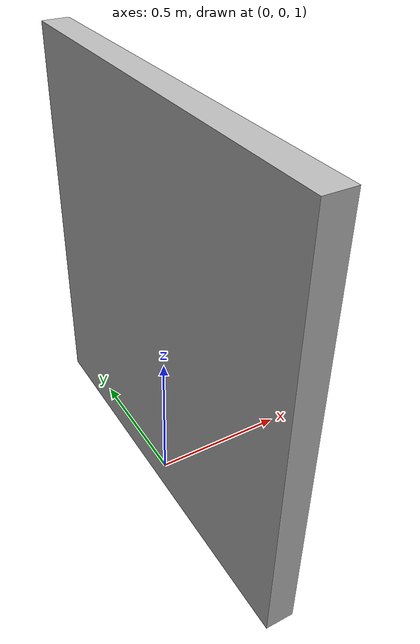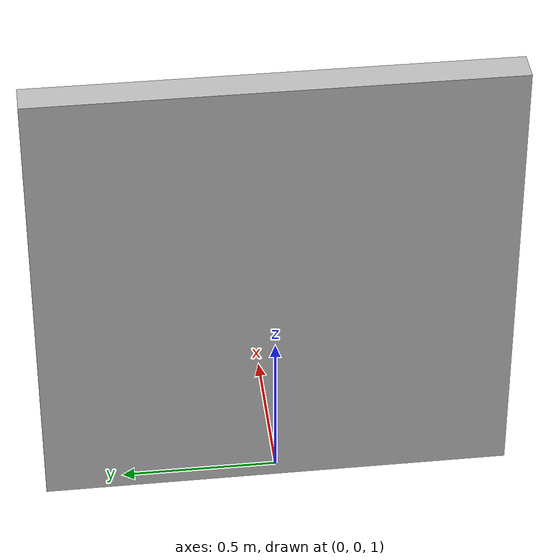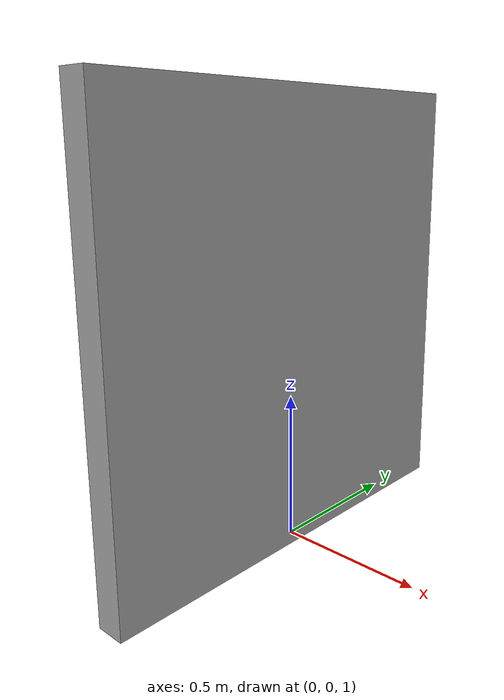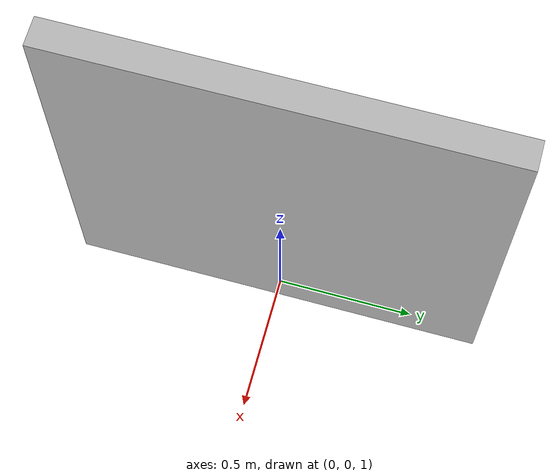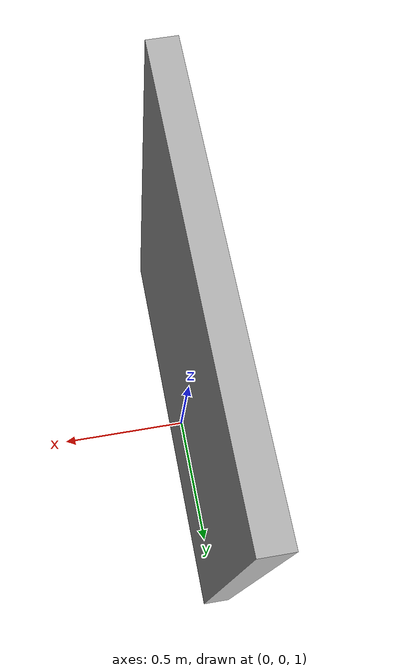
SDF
<?xml version="1.0"?>
<sdf version="1.6">
<model name="uc_deec_cr_qr_P2">
  <static>true</static>
  <pose>0 0 1.75 0 0 0</pose>
    <link name="link">
      <collision name="collision">
        <geometry>
          <box>
            <size>0.10 1.50 1.50</size>
          </box>
        </geometry>
        <surface>
          <friction>
            <ode>
              <mu>100</mu>
              <mu2>50</mu2>
            </ode>
          </friction>
        </surface>
      </collision>
      <visual name="visual">
        <geometry>
          <box>
            <size>0.10 1.50 1.50</size>
          </box>
        </geometry>
        <material>
          <script>
            <uri>model://uc_deec_cr_qr_P2/materials/scripts</uri>
            <uri>model://uc_deec_cr_qr_P2/materials/textures</uri>
            <name>uc_deec_cr_qr_P2/Image</name>
          </script>
        </material>
      </visual>
    </link>
  </model>
</sdf>
